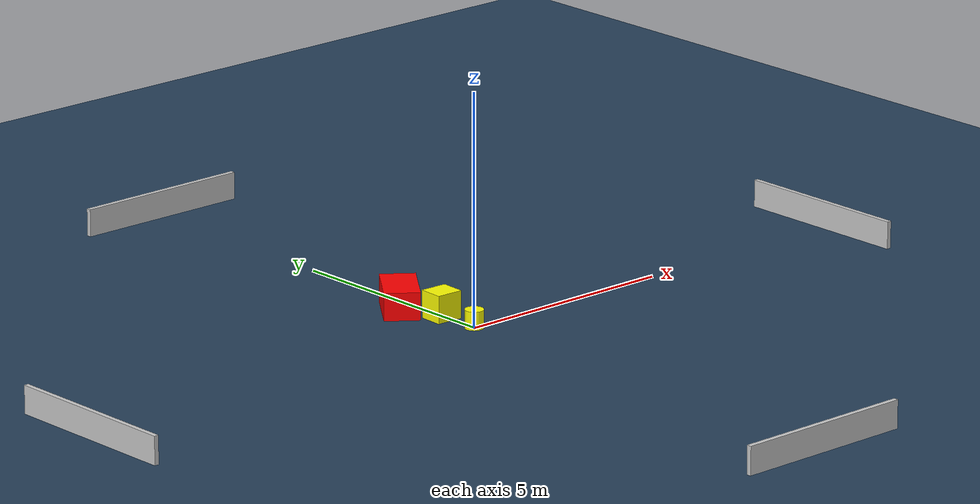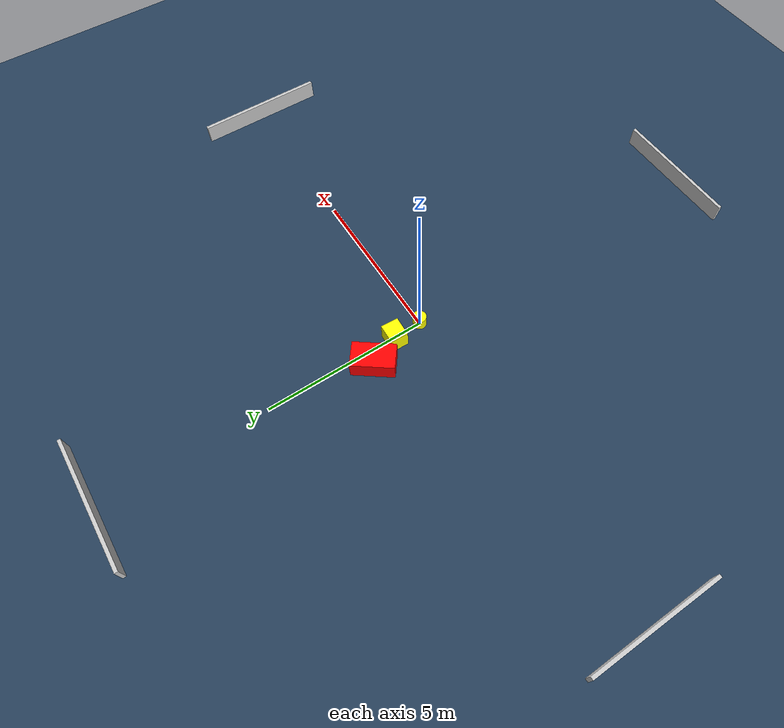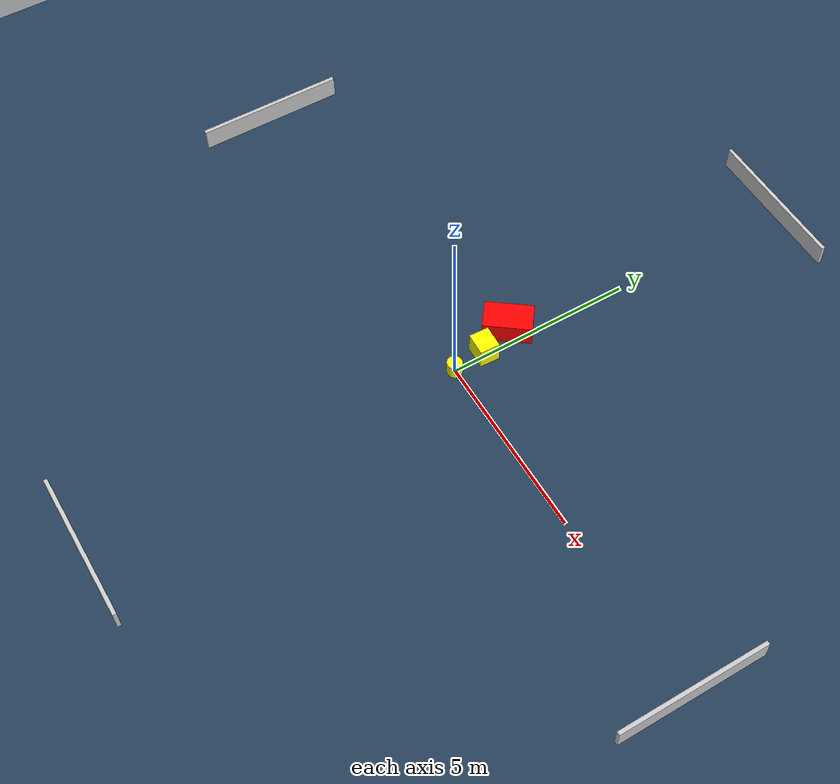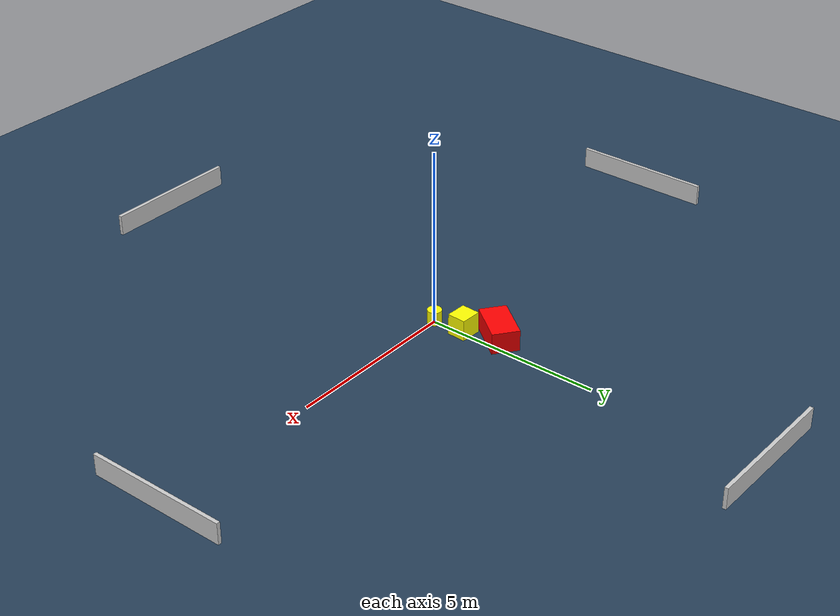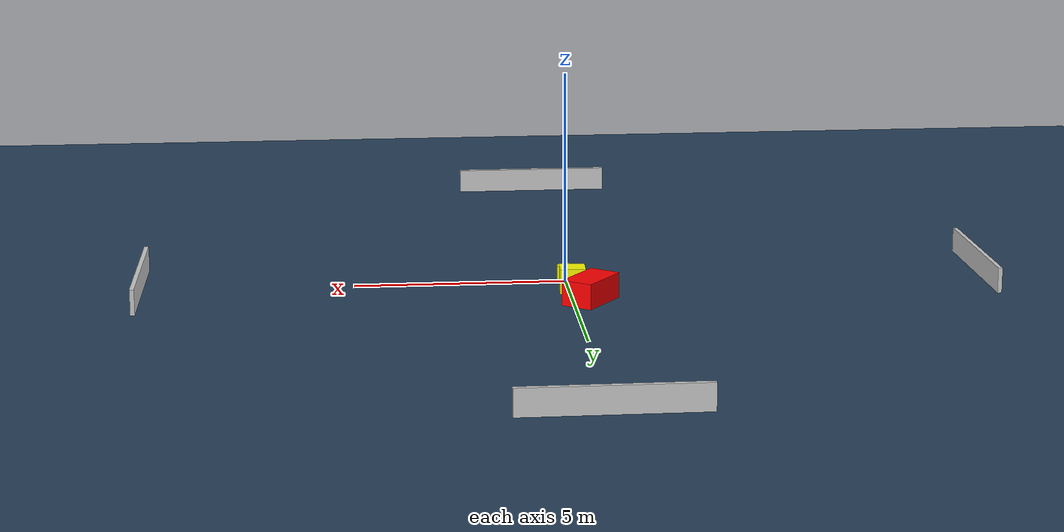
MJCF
<?xml version="1.0" ?>
<mujoco model="generated_environment">
  <option timestep="0.01" integrator="RK4" cone="elliptic"/>
  <default>
    <geom density="1"/>
  </default>
  <asset>
    <texture builtin="gradient" height="3072" name="skybox" rgb1="0.3 0.5 0.7" rgb2="0 0 0" type="skybox" width="512"/>
    <texture builtin="checker" height="300" name="groundplane" rgb1="0.2 0.3 0.4" rgb2="0.1 0.2 0.3" type="2d" width="300"/>
    <material name="groundplane" reflectance="0.2" texrepeat="5 5" texture="groundplane"/>
  </asset>
  <worldbody>
    <light dir="0 0 -1" directional="true" pos="0 0 1.5"/>
    <geom condim="3" friction="0.5 0.005 0.001" material="groundplane" name="floor" pos="0 0 0" size="0 0 0.05" type="plane"/>
    <body name="walls">
      <geom name="wall_1" condim="4" pos="-10.0 0.0 0.3" rgba="0.800000011920929 0.800000011920929 0.800000011920929 1.0" size="0.05 2.0 0.3" type="box"/>
      <geom name="wall_2" condim="4" pos="10.0 0.0 0.3" rgba="0.800000011920929 0.800000011920929 0.800000011920929 1.0" size="0.05 2.0 0.3" type="box"/>
      <geom name="wall_3" condim="4" pos="0.0 -10.0 0.3" rgba="0.800000011920929 0.800000011920929 0.800000011920929 1.0" size="2.0 0.05 0.3" type="box"/>
      <geom name="wall_4" condim="4" pos="0.0 10.0 0.3" rgba="0.800000011920929 0.800000011920929 0.800000011920929 1.0" size="2.0 0.05 0.3" type="box"/>
    </body>
    <body name="robot">
      <joint name="joint_x" type="slide" pos="0 0 0" axis="1 0 0"/>
      <joint name="joint_y" type="slide" pos="0 0 0" axis="0 1 0"/>
      <geom name="robot" type="cylinder" pos="0.0 0.0 0.2" size="0.2 0.2 0.0" mass="5.0" friction="1.0 0.005 0.0001" condim="4" rgba="1.0 1.0 0.0 1.0"/>
    </body>
    <body name="obstacle_1_movable">
      <geom name="obstacle_1_movable" condim="4" pos="-0.07475392451317457 0.9100604764706648 0.3" euler="0 0 357.42383321280016" friction="0.0 0.005 0.001" rgba="1.0 1.0 0.0 1.0" size="0.29832073738599774 0.2668259861920084 0.3" type="box" mass="0.1"/>
      <joint type="free"/>
    </body>
    <body name="obstacle_2_static">
      <geom name="obstacle_2_static" condim="4" pos="-0.4086003282787903 1.824774135079419 0.3" euler="0 0 323.0260996542989" friction="0.0 0.005 0.001" rgba="1.0 0.0 0.0 1.0" size="0.3805642922115998 0.6408770766132776 0.3" type="box"/>
    </body>
  </worldbody>
  <actuator>
    <motor name="actuator_x" joint="joint_x" gear="1" ctrlrange="-1 1"/>
    <motor name="actuator_y" joint="joint_y" gear="1" ctrlrange="-1 1"/>
  </actuator>
</mujoco>
